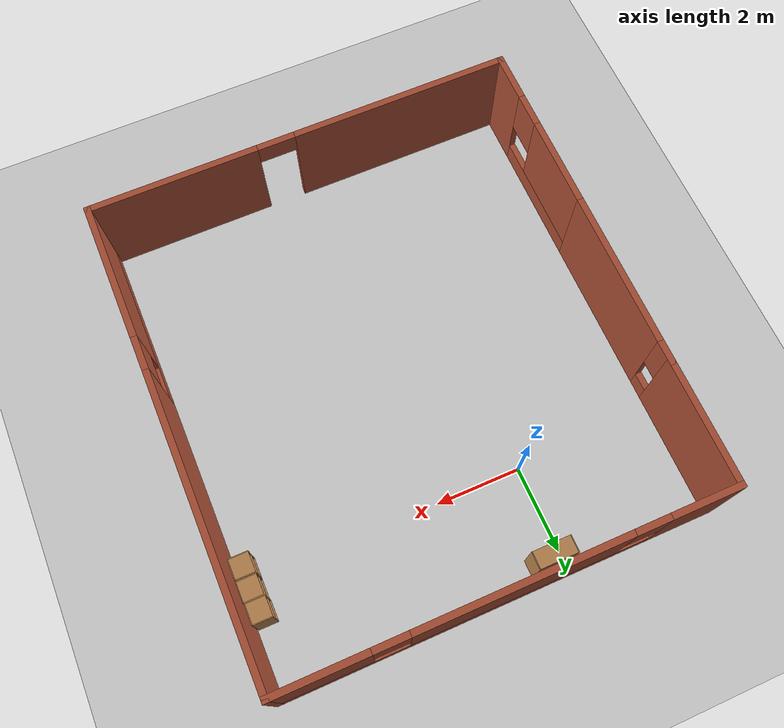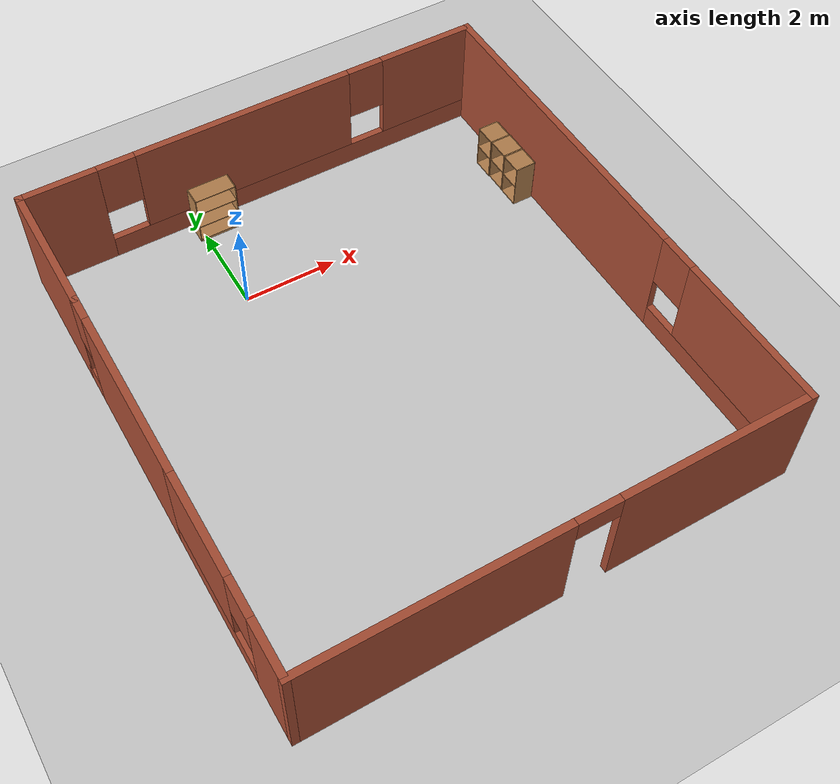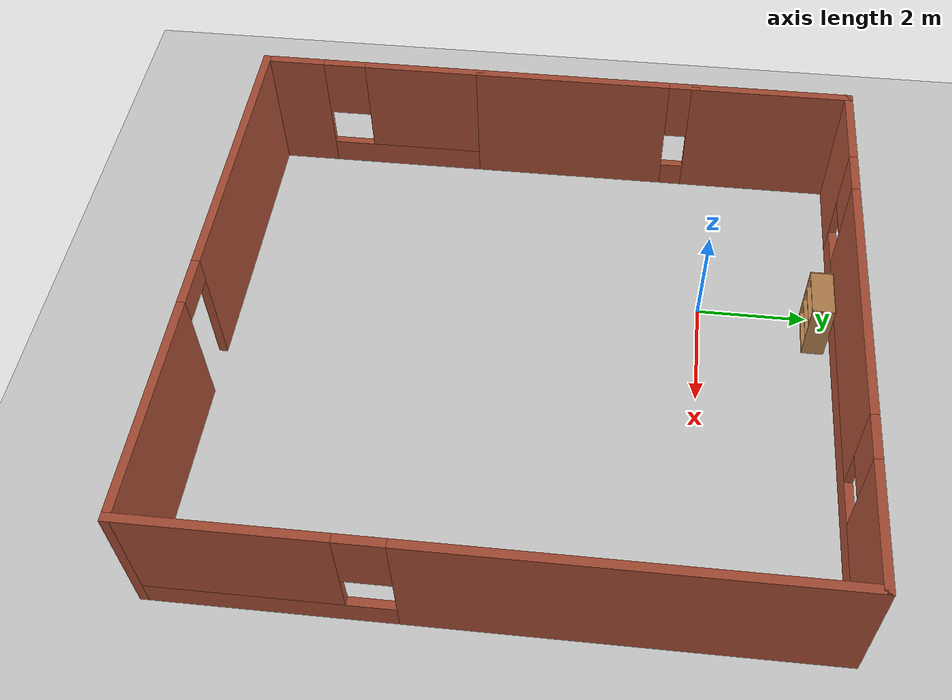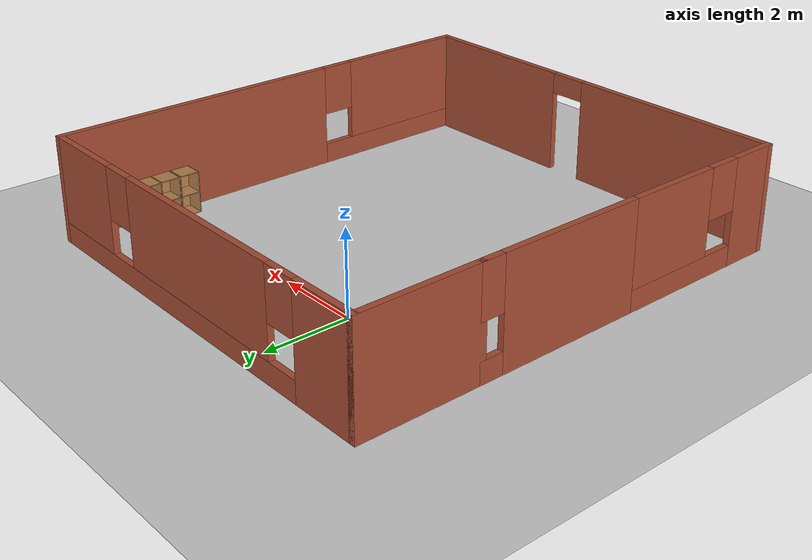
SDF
<sdf version="1.7">
 <world name="default">
  <light name="sun" type="directional">
   <pose>0 0 10 0 -0 0</pose>
   <diffuse>0.8 0.8 0.8 1</diffuse>
   <specular>0.2 0.2 0.2 1</specular>
   <attenuation>
    <range>1000</range>
    <constant>0.9</constant>
    <linear>0.01</linear>
    <quadratic>0.001</quadratic>
   </attenuation>
   <direction>-0.5 0.1 -0.9</direction>
   <spot><inner_angle>0</inner_angle><outer_angle>0</outer_angle><falloff>0</falloff></spot>
  </light>
  <model name="ground_plane">
   <static>1</static>
   <link name="link">
    <collision name="collision">
     <geometry><plane><normal>0 0 1</normal><size>100 100</size></plane></geometry>
     <surface>
      <contact><collide_bitmask>65535</collide_bitmask></contact>
      <friction><ode><mu>100</mu><mu2>50</mu2></ode></friction>
     </surface>
    </collision>
    <visual name="visual">
     <cast_shadows>0</cast_shadows>
     <geometry><plane><normal>0 0 1</normal><size>100 100</size></plane></geometry>
     <material>
      <script><uri>file://media/materials/scripts/gazebo.material</uri><name>Gazebo/Grey</name></script>
     </material>
    </visual>
   </link>
  </model>
  <gravity>0 0 -9.8</gravity>
  <magnetic_field>6e-06 2.3e-05 -4.2e-05</magnetic_field>
  <atmosphere type="adiabatic"/>
  <physics type="ode">
   <max_step_size>0.001</max_step_size>
   <real_time_factor>1</real_time_factor>
   <real_time_update_rate>1000</real_time_update_rate>
  </physics>
  <scene><ambient>0.4 0.4 0.4 1</ambient><background>0.7 0.7 0.7 1</background><shadows>1</shadows></scene>
  <audio><device>default</device></audio>
  <spherical_coordinates>
   <surface_model>EARTH_WGS84</surface_model>
   <latitude_deg>0</latitude_deg>
   <longitude_deg>0</longitude_deg>
   <elevation>0</elevation>
   <heading_deg>0</heading_deg>
  </spherical_coordinates>
  <model name="Test_building">
   <pose>1.65332 -3.06086 0 0 -0 0</pose>
   <link name="Wall_53">
    <pose>-5.05 0.65 0 0 -0 1.5708</pose>
    <visual name="Wall_53_Visual_0">
     <pose>-0.285652 0 1.25 0 -0 0</pose>
     <geometry><box><size>3.6787 0.15 2.5</size></box></geometry>
     <material>
      <script><uri>file://media/materials/scripts/gazebo.material</uri><name>Gazebo/Bricks</name></script>
      <ambient>1 1 1 1</ambient>
     </material>
     <meta><layer>0</layer></meta>
    </visual>
    <collision name="Wall_53_Collision_0">
     <geometry><box><size>3.6787 0.15 2.5</size></box></geometry>
     <pose>-0.285652 0 1.25 0 -0 0</pose>
    </collision>
    <visual name="Wall_53_Visual_1">
     <pose>1.83935 0 0.25 0 -0 0</pose>
     <geometry><box><size>0.571303 0.15 0.5</size></box></geometry>
     <material>
      <script><uri>file://media/materials/scripts/gazebo.material</uri><name>Gazebo/Bricks</name></script>
      <ambient>1 1 1 1</ambient>
     </material>
     <meta><layer>0</layer></meta>
    </visual>
    <collision name="Wall_53_Collision_1">
     <geometry><box><size>0.571303 0.15 0.5</size></box></geometry>
     <pose>1.83935 0 0.25 0 -0 0</pose>
    </collision>
    <visual name="Wall_53_Visual_2">
     <pose>1.83935 0 1.9 0 -0 0</pose>
     <geometry><box><size>0.571303 0.15 1.2</size></box></geometry>
     <material>
      <script><uri>file://media/materials/scripts/gazebo.material</uri><name>Gazebo/Bricks</name></script>
      <ambient>1 1 1 1</ambient>
     </material>
     <meta><layer>0</layer></meta>
    </visual>
    <collision name="Wall_53_Collision_2">
     <geometry><box><size>0.571303 0.15 1.2</size></box></geometry>
     <pose>1.83935 0 1.9 0 -0 0</pose>
    </collision>
   </link>
   <link name="Wall_55">
    <collision name="Wall_55_Collision">
     <geometry><box><size>3 0.15 2.5</size></box></geometry>
     <pose>0 0 1.25 0 -0 0</pose>
    </collision>
    <visual name="Wall_55_Visual">
     <pose>0 0 1.25 0 -0 0</pose>
     <geometry><box><size>3 0.15 2.5</size></box></geometry>
     <material>
      <script><uri>file://media/materials/scripts/gazebo.material</uri><name>Gazebo/Bricks</name></script>
      <ambient>1 1 1 1</ambient>
     </material>
     <meta><layer>0</layer></meta>
    </visual>
    <pose>-5.05 4.125 0 0 -0 1.5708</pose>
   </link>
   <link name="Wall_57">
    <pose>-0 5.55 0 0 -0 0</pose>
    <visual name="Wall_57_Visual_0">
     <pose>-4.29634 0 1.25 0 -0 0</pose>
     <geometry><box><size>1.65732 0.15 2.5</size></box></geometry>
     <material>
      <script><uri>file://media/materials/scripts/gazebo.material</uri><name>Gazebo/Bricks</name></script>
      <ambient>1 1 1 1</ambient>
     </material>
     <meta><layer>0</layer></meta>
    </visual>
    <collision name="Wall_57_Collision_0">
     <geometry><box><size>1.65732 0.15 2.5</size></box></geometry>
     <pose>-4.29634 0 1.25 0 -0 0</pose>
    </collision>
    <visual name="Wall_57_Visual_1">
     <pose>0.828662 0 0.25 0 -0 0</pose>
     <geometry><box><size>8.59267 0.15 0.5</size></box></geometry>
     <material>
      <script><uri>file://media/materials/scripts/gazebo.material</uri><name>Gazebo/Bricks</name></script>
      <ambient>1 1 1 1</ambient>
     </material>
     <meta><layer>0</layer></meta>
    </visual>
    <collision name="Wall_57_Collision_1">
     <geometry><box><size>8.59267 0.15 0.5</size></box></geometry>
     <pose>0.828662 0 0.25 0 -0 0</pose>
    </collision>
    <visual name="Wall_57_Visual_2">
     <pose>-0.270963 0 1.5 0 -0 0</pose>
     <geometry><box><size>4.79342 0.15 2</size></box></geometry>
     <material>
      <script><uri>file://media/materials/scripts/gazebo.material</uri><name>Gazebo/Bricks</name></script>
      <ambient>1 1 1 1</ambient>
     </material>
     <meta><layer>0</layer></meta>
    </visual>
    <collision name="Wall_57_Collision_2">
     <geometry><box><size>4.79342 0.15 2</size></box></geometry>
     <pose>-0.270963 0 1.5 0 -0 0</pose>
    </collision>
    <visual name="Wall_57_Visual_3">
     <pose>4.02537 0 1.5 0 -0 0</pose>
     <geometry><box><size>2.19925 0.15 2</size></box></geometry>
     <material>
      <script><uri>file://media/materials/scripts/gazebo.material</uri><name>Gazebo/Bricks</name></script>
      <ambient>1 1 1 1</ambient>
     </material>
     <meta><layer>0</layer></meta>
    </visual>
    <collision name="Wall_57_Collision_3">
     <geometry><box><size>2.19925 0.15 2</size></box></geometry>
     <pose>4.02537 0 1.5 0 -0 0</pose>
    </collision>
    <visual name="Wall_57_Visual_4">
     <pose>-3.06767 0 1.9 0 -0 0</pose>
     <geometry><box><size>0.8 0.15 1.2</size></box></geometry>
     <material>
      <script><uri>file://media/materials/scripts/gazebo.material</uri><name>Gazebo/Bricks</name></script>
      <ambient>1 1 1 1</ambient>
     </material>
     <meta><layer>0</layer></meta>
    </visual>
    <collision name="Wall_57_Collision_4">
     <geometry><box><size>0.8 0.15 1.2</size></box></geometry>
     <pose>-3.06767 0 1.9 0 -0 0</pose>
    </collision>
    <visual name="Wall_57_Visual_5">
     <pose>2.52575 0 1.9 0 -0 0</pose>
     <geometry><box><size>0.8 0.15 1.2</size></box></geometry>
     <material>
      <script><uri>file://media/materials/scripts/gazebo.material</uri><name>Gazebo/Bricks</name></script>
      <ambient>1 1 1 1</ambient>
     </material>
     <meta><layer>0</layer></meta>
    </visual>
    <collision name="Wall_57_Collision_5">
     <geometry><box><size>0.8 0.15 1.2</size></box></geometry>
     <pose>2.52575 0 1.9 0 -0 0</pose>
    </collision>
   </link>
   <link name="Wall_58">
    <pose>5.05 -0 0 0 -0 -1.5708</pose>
    <visual name="Wall_58_Visual_0">
     <pose>-2.0805 0 1.25 0 -0 0</pose>
     <geometry><box><size>7.08901 0.15 2.5</size></box></geometry>
     <material>
      <script><uri>file://media/materials/scripts/gazebo.material</uri><name>Gazebo/Bricks</name></script>
      <ambient>1 1 1 1</ambient>
     </material>
     <meta><layer>0</layer></meta>
    </visual>
    <collision name="Wall_58_Collision_0">
     <geometry><box><size>7.08901 0.15 2.5</size></box></geometry>
     <pose>-2.0805 0 1.25 0 -0 0</pose>
    </collision>
    <visual name="Wall_58_Visual_1">
     <pose>3.5445 0 0.25 0 -0 0</pose>
     <geometry><box><size>4.16099 0.15 0.5</size></box></geometry>
     <material>
      <script><uri>file://media/materials/scripts/gazebo.material</uri><name>Gazebo/Bricks</name></script>
      <ambient>1 1 1 1</ambient>
     </material>
     <meta><layer>0</layer></meta>
    </visual>
    <collision name="Wall_58_Collision_1">
     <geometry><box><size>4.16099 0.15 0.5</size></box></geometry>
     <pose>3.5445 0 0.25 0 -0 0</pose>
    </collision>
    <visual name="Wall_58_Visual_2">
     <pose>3.9445 0 1.5 0 -0 0</pose>
     <geometry><box><size>3.36099 0.15 2</size></box></geometry>
     <material>
      <script><uri>file://media/materials/scripts/gazebo.material</uri><name>Gazebo/Bricks</name></script>
      <ambient>1 1 1 1</ambient>
     </material>
     <meta><layer>0</layer></meta>
    </visual>
    <collision name="Wall_58_Collision_2">
     <geometry><box><size>3.36099 0.15 2</size></box></geometry>
     <pose>3.9445 0 1.5 0 -0 0</pose>
    </collision>
    <visual name="Wall_58_Visual_3">
     <pose>1.86401 0 1.9 0 -0 0</pose>
     <geometry><box><size>0.8 0.15 1.2</size></box></geometry>
     <material>
      <script><uri>file://media/materials/scripts/gazebo.material</uri><name>Gazebo/Bricks</name></script>
      <ambient>1 1 1 1</ambient>
     </material>
     <meta><layer>0</layer></meta>
    </visual>
    <collision name="Wall_58_Collision_3">
     <geometry><box><size>0.8 0.15 1.2</size></box></geometry>
     <pose>1.86401 0 1.9 0 -0 0</pose>
    </collision>
   </link>
   <link name="Wall_59">
    <pose>-0 -5.55 0 0 -0 3.14159</pose>
    <visual name="Wall_59_Visual_0">
     <pose>-3.09175 0 1.25 0 -0 0</pose>
     <geometry><box><size>4.06649 0.15 2.5</size></box></geometry>
     <material>
      <script><uri>file://media/materials/scripts/gazebo.material</uri><name>Gazebo/Bricks</name></script>
      <ambient>1 1 1 1</ambient>
     </material>
     <meta><layer>0</layer></meta>
    </visual>
    <collision name="Wall_59_Collision_0">
     <geometry><box><size>4.06649 0.15 2.5</size></box></geometry>
     <pose>-3.09175 0 1.25 0 -0 0</pose>
    </collision>
    <visual name="Wall_59_Visual_1">
     <pose>2.48325 0 1.25 0 -0 0</pose>
     <geometry><box><size>5.28351 0.15 2.5</size></box></geometry>
     <material>
      <script><uri>file://media/materials/scripts/gazebo.material</uri><name>Gazebo/Bricks</name></script>
      <ambient>1 1 1 1</ambient>
     </material>
     <meta><layer>0</layer></meta>
    </visual>
    <collision name="Wall_59_Collision_1">
     <geometry><box><size>5.28351 0.15 2.5</size></box></geometry>
     <pose>2.48325 0 1.25 0 -0 0</pose>
    </collision>
    <visual name="Wall_59_Visual_2">
     <pose>-0.608506 0 2.25 0 -0 0</pose>
     <geometry><box><size>0.9 0.15 0.5</size></box></geometry>
     <material>
      <script><uri>file://media/materials/scripts/gazebo.material</uri><name>Gazebo/Bricks</name></script>
      <ambient>1 1 1 1</ambient>
     </material>
     <meta><layer>0</layer></meta>
    </visual>
    <collision name="Wall_59_Collision_2">
     <geometry><box><size>0.9 0.15 0.5</size></box></geometry>
     <pose>-0.608506 0 2.25 0 -0 0</pose>
    </collision>
   </link>
   <link name="Wall_60">
    <pose>-5.05 -3.475 0 0 -0 1.5708</pose>
    <visual name="Wall_60_Visual_0">
     <pose>-1.55125 0 1.25 0 -0 0</pose>
     <geometry><box><size>1.1975 0.15 2.5</size></box></geometry>
     <material>
      <script><uri>file://media/materials/scripts/gazebo.material</uri><name>Gazebo/Bricks</name></script>
      <ambient>1 1 1 1</ambient>
     </material>
     <meta><layer>0</layer></meta>
    </visual>
    <collision name="Wall_60_Collision_0">
     <geometry><box><size>1.1975 0.15 2.5</size></box></geometry>
     <pose>-1.55125 0 1.25 0 -0 0</pose>
    </collision>
    <visual name="Wall_60_Visual_1">
     <pose>0.59875 0 0.25 0 -0 0</pose>
     <geometry><box><size>3.1025 0.15 0.5</size></box></geometry>
     <material>
      <script><uri>file://media/materials/scripts/gazebo.material</uri><name>Gazebo/Bricks</name></script>
      <ambient>1 1 1 1</ambient>
     </material>
     <meta><layer>0</layer></meta>
    </visual>
    <collision name="Wall_60_Collision_1">
     <geometry><box><size>3.1025 0.15 0.5</size></box></geometry>
     <pose>0.59875 0 0.25 0 -0 0</pose>
    </collision>
    <visual name="Wall_60_Visual_2">
     <pose>0.99875 0 1.5 0 -0 0</pose>
     <geometry><box><size>2.3025 0.15 2</size></box></geometry>
     <material>
      <script><uri>file://media/materials/scripts/gazebo.material</uri><name>Gazebo/Bricks</name></script>
      <ambient>1 1 1 1</ambient>
     </material>
     <meta><layer>0</layer></meta>
    </visual>
    <collision name="Wall_60_Collision_2">
     <geometry><box><size>2.3025 0.15 2</size></box></geometry>
     <pose>0.99875 0 1.5 0 -0 0</pose>
    </collision>
    <visual name="Wall_60_Visual_3">
     <pose>-0.5525 0 1.9 0 -0 0</pose>
     <geometry><box><size>0.8 0.15 1.2</size></box></geometry>
     <material>
      <script><uri>file://media/materials/scripts/gazebo.material</uri><name>Gazebo/Bricks</name></script>
      <ambient>1 1 1 1</ambient>
     </material>
     <meta><layer>0</layer></meta>
    </visual>
    <collision name="Wall_60_Collision_3">
     <geometry><box><size>0.8 0.15 1.2</size></box></geometry>
     <pose>-0.5525 0 1.9 0 -0 0</pose>
    </collision>
   </link>
   <static>1</static>
  </model>
  <model name="cabinet">
   <static>1</static>
   <link name="cabinet_bottom_plate">
    <inertial>
     <pose>0 0 -1 0 -0 0</pose>
     <inertia><ixx>2.05</ixx><ixy>0</ixy><ixz>0</ixz><iyy>2.05</iyy><iyz>0</iyz><izz>2.05</izz></inertia>
     <mass>25</mass>
    </inertial>
    <collision name="cabinet_bottom_plate_geom">
     <pose>0 0 0.01 0 -0 0</pose>
     <geometry><box><size>0.45 0.45 0.02</size></box></geometry>
    </collision>
    <visual name="cabinet_bottom_plate_geom_visual">
     <pose>0 0 0.01 0 -0 0</pose>
     <geometry><box><size>0.45 0.45 0.02</size></box></geometry>
     <material>
      <script><uri>file://media/materials/scripts/gazebo.material</uri><name>Gazebo/Wood</name></script>
     </material>
    </visual>
    <collision name="cabinet_bottom_plate_geom_cabinet_back_plate">
     <pose>0.235 0 0.51 0 -0 0</pose>
     <geometry><box><size>0.02 0.45 1.02</size></box></geometry>
    </collision>
    <visual name="cabinet_bottom_plate_geom_cabinet_back_plate_visual">
     <pose>0.235 0 0.51 0 -0 0</pose>
     <geometry><box><size>0.02 0.45 1.02</size></box></geometry>
     <material>
      <script><uri>file://media/materials/scripts/gazebo.material</uri><name>Gazebo/Wood</name></script>
     </material>
    </visual>
    <collision name="cabinet_bottom_plate_geom_cabinet_left_plate">
     <pose>0 0.235 0.51 0 -0 0</pose>
     <geometry><box><size>0.45 0.02 1.02</size></box></geometry>
    </collision>
    <visual name="cabinet_bottom_plate_geom_cabinet_left_plate_visual">
     <pose>0 0.235 0.51 0 -0 0</pose>
     <geometry><box><size>0.45 0.02 1.02</size></box></geometry>
     <material>
      <script><uri>file://media/materials/scripts/gazebo.material</uri><name>Gazebo/Wood</name></script>
     </material>
    </visual>
    <collision name="cabinet_bottom_plate_geom_cabinet_middle_plate">
     <pose>0 0 0.51 0 -0 0</pose>
     <geometry><box><size>0.45 0.45 0.02</size></box></geometry>
    </collision>
    <visual name="cabinet_bottom_plate_geom_cabinet_middle_plate_visual">
     <pose>0 0 0.51 0 -0 0</pose>
     <geometry><box><size>0.45 0.45 0.02</size></box></geometry>
     <material>
      <script><uri>file://media/materials/scripts/gazebo.material</uri><name>Gazebo/Wood</name></script>
     </material>
    </visual>
    <collision name="cabinet_bottom_plate_geom_cabinet_right_plate">
     <pose>0 -0.235 0.51 0 -0 0</pose>
     <geometry><box><size>0.45 0.02 1.02</size></box></geometry>
    </collision>
    <visual name="cabinet_bottom_plate_geom_cabinet_right_plate_visual">
     <pose>0 -0.235 0.51 0 -0 0</pose>
     <geometry><box><size>0.45 0.02 1.02</size></box></geometry>
     <material>
      <script><uri>file://media/materials/scripts/gazebo.material</uri><name>Gazebo/Wood</name></script>
     </material>
    </visual>
    <collision name="cabinet_bottom_plate_geom_cabinet_top_plate">
     <pose>0 0 1.01 0 -0 0</pose>
     <geometry><box><size>0.45 0.45 0.02</size></box></geometry>
    </collision>
    <visual name="cabinet_bottom_plate_geom_cabinet_top_plate_visual">
     <pose>0 0 1.01 0 -0 0</pose>
     <geometry><box><size>0.45 0.45 0.02</size></box></geometry>
     <material>
      <script><uri>file://media/materials/scripts/gazebo.material</uri><name>Gazebo/Wood</name></script>
     </material>
    </visual>
   </link>
   <pose>6.38361 -0.257302 0 0 -0 0</pose>
  </model>
  <model name="cabinet_clone">
   <static>1</static>
   <link name="cabinet_bottom_plate">
    <inertial>
     <pose>0 0 -1 0 -0 0</pose>
     <inertia><ixx>2.05</ixx><ixy>0</ixy><ixz>0</ixz><iyy>2.05</iyy><iyz>0</iyz><izz>2.05</izz></inertia>
     <mass>25</mass>
    </inertial>
    <collision name="cabinet_bottom_plate_geom">
     <pose>0 0 0.01 0 -0 0</pose>
     <geometry><box><size>0.45 0.45 0.02</size></box></geometry>
    </collision>
    <visual name="cabinet_bottom_plate_geom_visual">
     <pose>0 0 0.01 0 -0 0</pose>
     <geometry><box><size>0.45 0.45 0.02</size></box></geometry>
     <material>
      <script><uri>file://media/materials/scripts/gazebo.material</uri><name>Gazebo/Wood</name></script>
     </material>
    </visual>
    <collision name="cabinet_bottom_plate_geom_cabinet_back_plate">
     <pose>0.235 0 0.51 0 -0 0</pose>
     <geometry><box><size>0.02 0.45 1.02</size></box></geometry>
    </collision>
    <visual name="cabinet_bottom_plate_geom_cabinet_back_plate_visual">
     <pose>0.235 0 0.51 0 -0 0</pose>
     <geometry><box><size>0.02 0.45 1.02</size></box></geometry>
     <material>
      <script><uri>file://media/materials/scripts/gazebo.material</uri><name>Gazebo/Wood</name></script>
     </material>
    </visual>
    <collision name="cabinet_bottom_plate_geom_cabinet_left_plate">
     <pose>0 0.235 0.51 0 -0 0</pose>
     <geometry><box><size>0.45 0.02 1.02</size></box></geometry>
    </collision>
    <visual name="cabinet_bottom_plate_geom_cabinet_left_plate_visual">
     <pose>0 0.235 0.51 0 -0 0</pose>
     <geometry><box><size>0.45 0.02 1.02</size></box></geometry>
     <material>
      <script><uri>file://media/materials/scripts/gazebo.material</uri><name>Gazebo/Wood</name></script>
     </material>
    </visual>
    <collision name="cabinet_bottom_plate_geom_cabinet_middle_plate">
     <pose>0 0 0.51 0 -0 0</pose>
     <geometry><box><size>0.45 0.45 0.02</size></box></geometry>
    </collision>
    <visual name="cabinet_bottom_plate_geom_cabinet_middle_plate_visual">
     <pose>0 0 0.51 0 -0 0</pose>
     <geometry><box><size>0.45 0.45 0.02</size></box></geometry>
     <material>
      <script><uri>file://media/materials/scripts/gazebo.material</uri><name>Gazebo/Wood</name></script>
     </material>
    </visual>
    <collision name="cabinet_bottom_plate_geom_cabinet_right_plate">
     <pose>0 -0.235 0.51 0 -0 0</pose>
     <geometry><box><size>0.45 0.02 1.02</size></box></geometry>
    </collision>
    <visual name="cabinet_bottom_plate_geom_cabinet_right_plate_visual">
     <pose>0 -0.235 0.51 0 -0 0</pose>
     <geometry><box><size>0.45 0.02 1.02</size></box></geometry>
     <material>
      <script><uri>file://media/materials/scripts/gazebo.material</uri><name>Gazebo/Wood</name></script>
     </material>
    </visual>
    <collision name="cabinet_bottom_plate_geom_cabinet_top_plate">
     <pose>0 0 1.01 0 -0 0</pose>
     <geometry><box><size>0.45 0.45 0.02</size></box></geometry>
    </collision>
    <visual name="cabinet_bottom_plate_geom_cabinet_top_plate_visual">
     <pose>0 0 1.01 0 -0 0</pose>
     <geometry><box><size>0.45 0.45 0.02</size></box></geometry>
     <material>
      <script><uri>file://media/materials/scripts/gazebo.material</uri><name>Gazebo/Wood</name></script>
     </material>
    </visual>
   </link>
   <pose>6.38756 0.239673 0 0 -0 0</pose>
  </model>
  <model name="cabinet_clone_0">
   <static>1</static>
   <link name="cabinet_bottom_plate">
    <inertial>
     <pose>0 0 -1 0 -0 0</pose>
     <inertia><ixx>2.05</ixx><ixy>0</ixy><ixz>0</ixz><iyy>2.05</iyy><iyz>0</iyz><izz>2.05</izz></inertia>
     <mass>25</mass>
    </inertial>
    <collision name="cabinet_bottom_plate_geom">
     <pose>0 0 0.01 0 -0 0</pose>
     <geometry><box><size>0.45 0.45 0.02</size></box></geometry>
    </collision>
    <visual name="cabinet_bottom_plate_geom_visual">
     <pose>0 0 0.01 0 -0 0</pose>
     <geometry><box><size>0.45 0.45 0.02</size></box></geometry>
     <material>
      <script><uri>file://media/materials/scripts/gazebo.material</uri><name>Gazebo/Wood</name></script>
     </material>
    </visual>
    <collision name="cabinet_bottom_plate_geom_cabinet_back_plate">
     <pose>0.235 0 0.51 0 -0 0</pose>
     <geometry><box><size>0.02 0.45 1.02</size></box></geometry>
    </collision>
    <visual name="cabinet_bottom_plate_geom_cabinet_back_plate_visual">
     <pose>0.235 0 0.51 0 -0 0</pose>
     <geometry><box><size>0.02 0.45 1.02</size></box></geometry>
     <material>
      <script><uri>file://media/materials/scripts/gazebo.material</uri><name>Gazebo/Wood</name></script>
     </material>
    </visual>
    <collision name="cabinet_bottom_plate_geom_cabinet_left_plate">
     <pose>0 0.235 0.51 0 -0 0</pose>
     <geometry><box><size>0.45 0.02 1.02</size></box></geometry>
    </collision>
    <visual name="cabinet_bottom_plate_geom_cabinet_left_plate_visual">
     <pose>0 0.235 0.51 0 -0 0</pose>
     <geometry><box><size>0.45 0.02 1.02</size></box></geometry>
     <material>
      <script><uri>file://media/materials/scripts/gazebo.material</uri><name>Gazebo/Wood</name></script>
     </material>
    </visual>
    <collision name="cabinet_bottom_plate_geom_cabinet_middle_plate">
     <pose>0 0 0.51 0 -0 0</pose>
     <geometry><box><size>0.45 0.45 0.02</size></box></geometry>
    </collision>
    <visual name="cabinet_bottom_plate_geom_cabinet_middle_plate_visual">
     <pose>0 0 0.51 0 -0 0</pose>
     <geometry><box><size>0.45 0.45 0.02</size></box></geometry>
     <material>
      <script><uri>file://media/materials/scripts/gazebo.material</uri><name>Gazebo/Wood</name></script>
     </material>
    </visual>
    <collision name="cabinet_bottom_plate_geom_cabinet_right_plate">
     <pose>0 -0.235 0.51 0 -0 0</pose>
     <geometry><box><size>0.45 0.02 1.02</size></box></geometry>
    </collision>
    <visual name="cabinet_bottom_plate_geom_cabinet_right_plate_visual">
     <pose>0 -0.235 0.51 0 -0 0</pose>
     <geometry><box><size>0.45 0.02 1.02</size></box></geometry>
     <material>
      <script><uri>file://media/materials/scripts/gazebo.material</uri><name>Gazebo/Wood</name></script>
     </material>
    </visual>
    <collision name="cabinet_bottom_plate_geom_cabinet_top_plate">
     <pose>0 0 1.01 0 -0 0</pose>
     <geometry><box><size>0.45 0.45 0.02</size></box></geometry>
    </collision>
    <visual name="cabinet_bottom_plate_geom_cabinet_top_plate_visual">
     <pose>0 0 1.01 0 -0 0</pose>
     <geometry><box><size>0.45 0.45 0.02</size></box></geometry>
     <material>
      <script><uri>file://media/materials/scripts/gazebo.material</uri><name>Gazebo/Wood</name></script>
     </material>
    </visual>
   </link>
   <pose>6.37276 0.726282 0 0 -0 0</pose>
  </model>
  <model name="bookshelf">
   <static>1</static>
   <link name="link">
    <inertial><mass>1</mass></inertial>
    <collision name="back">
     <pose>0 0.005 0.6 0 -0 0</pose>
     <geometry><box><size>0.9 0.01 1.2</size></box></geometry>
    </collision>
    <visual name="visual1">
     <pose>0 0.005 0.6 0 -0 0</pose>
     <geometry><box><size>0.9 0.01 1.2</size></box></geometry>
     <material>
      <script><uri>file://media/materials/scripts/gazebo.material</uri><name>Gazebo/Wood</name></script>
     </material>
    </visual>
    <collision name="left_side">
     <pose>0.45 -0.195 0.6 0 -0 0</pose>
     <geometry><box><size>0.02 0.4 1.2</size></box></geometry>
    </collision>
    <visual name="visual2">
     <pose>0.45 -0.195 0.6 0 -0 0</pose>
     <geometry><box><size>0.02 0.4 1.2</size></box></geometry>
     <material>
      <script><uri>file://media/materials/scripts/gazebo.material</uri><name>Gazebo/Wood</name></script>
     </material>
    </visual>
    <collision name="right_side">
     <pose>-0.45 -0.195 0.6 0 -0 0</pose>
     <geometry><box><size>0.02 0.4 1.2</size></box></geometry>
    </collision>
    <visual name="visual3">
     <pose>-0.45 -0.195 0.6 0 -0 0</pose>
     <geometry><box><size>0.02 0.4 1.2</size></box></geometry>
     <material>
      <script><uri>file://media/materials/scripts/gazebo.material</uri><name>Gazebo/Wood</name></script>
     </material>
    </visual>
    <collision name="bottom">
     <pose>0 -0.195 0.03 0 -0 0</pose>
     <geometry><box><size>0.88 0.4 0.06</size></box></geometry>
    </collision>
    <visual name="visual4">
     <pose>0 -0.195 0.03 0 -0 0</pose>
     <geometry><box><size>0.88 0.4 0.06</size></box></geometry>
     <material>
      <script><uri>file://media/materials/scripts/gazebo.material</uri><name>Gazebo/Wood</name></script>
     </material>
    </visual>
    <collision name="top">
     <pose>0 -0.195 1.19 0 -0 0</pose>
     <geometry><box><size>0.88 0.4 0.02</size></box></geometry>
    </collision>
    <visual name="visual5">
     <pose>0 -0.195 1.19 0 -0 0</pose>
     <geometry><box><size>0.88 0.4 0.02</size></box></geometry>
     <material>
      <script><uri>file://media/materials/scripts/gazebo.material</uri><name>Gazebo/Wood</name></script>
     </material>
    </visual>
    <collision name="low_shelf">
     <pose>0 -0.195 0.43 0 -0 0</pose>
     <geometry><box><size>0.88 0.4 0.02</size></box></geometry>
    </collision>
    <visual name="visual6">
     <pose>0 -0.195 0.43 0 -0 0</pose>
     <geometry><box><size>0.88 0.4 0.02</size></box></geometry>
     <material>
      <script><uri>file://media/materials/scripts/gazebo.material</uri><name>Gazebo/Wood</name></script>
     </material>
    </visual>
    <collision name="high_shelf">
     <pose>0 -0.195 0.8 0 -0 0</pose>
     <geometry><box><size>0.88 0.4 0.02</size></box></geometry>
    </collision>
    <visual name="visual7">
     <pose>0 -0.195 0.8 0 -0 0</pose>
     <geometry><box><size>0.88 0.4 0.02</size></box></geometry>
     <material>
      <script><uri>file://media/materials/scripts/gazebo.material</uri><name>Gazebo/Wood</name></script>
     </material>
    </visual>
   </link>
   <pose>0.316299 2.28853 0 0 -0 0</pose>
  </model>
 </world>
</sdf>
